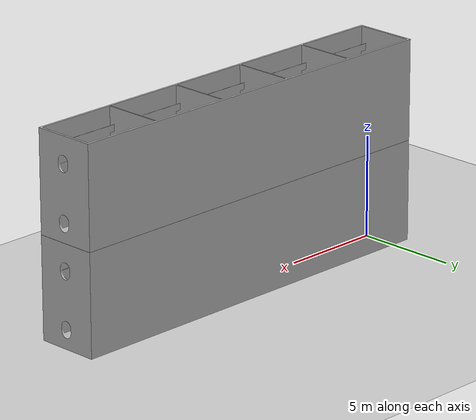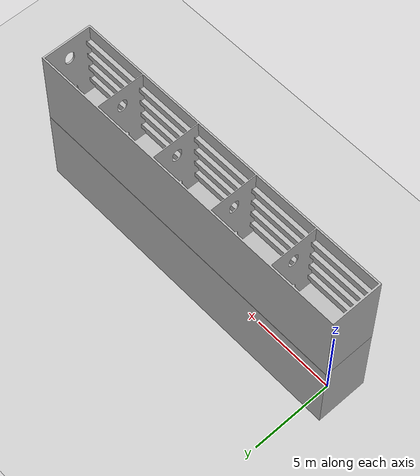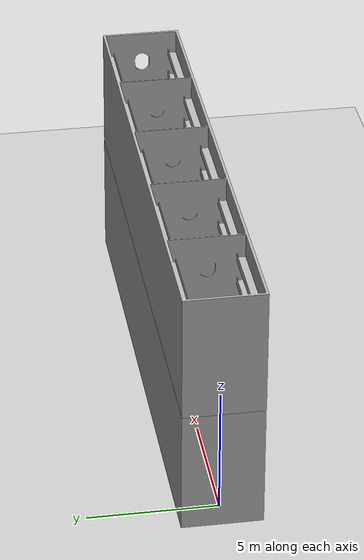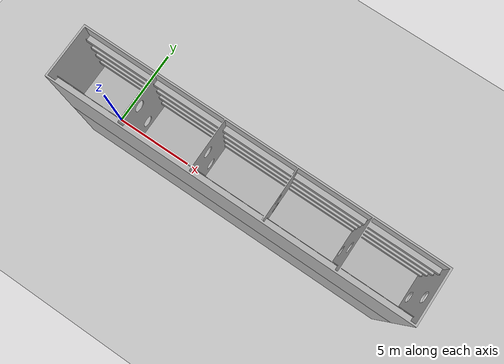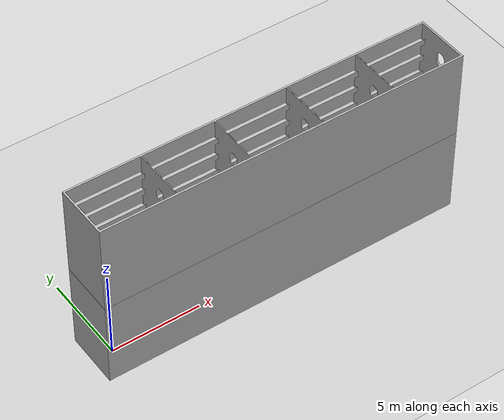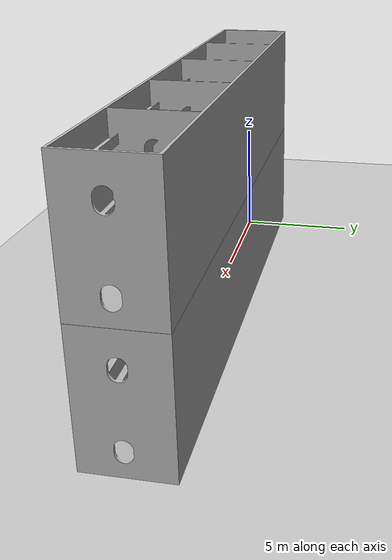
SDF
<sdf version="1.7">
 <world name="default">
  <light name="sun" type="directional">
   <pose>0 0 10 0 -0 0</pose>
   <diffuse>0.8 0.8 0.8 1</diffuse>
   <specular>0.2 0.2 0.2 1</specular>
   <attenuation>
    <range>1000</range>
    <constant>0.9</constant>
    <linear>0.01</linear>
    <quadratic>0.001</quadratic>
   </attenuation>
   <direction>-0.5 0.1 -0.9</direction>
   <spot><inner_angle>0</inner_angle><outer_angle>0</outer_angle><falloff>0</falloff></spot>
  </light>
  <plugin name="ros_interface_plugin" filename="librotors_gazebo_ros_interface_plugin.so"/>
  <model name="ground_plane">
   <static>1</static>
   <link name="link">
    <collision name="collision">
     <geometry><plane><normal>0 0 1</normal><size>100 100</size></plane></geometry>
     <surface><friction><ode><mu>100</mu><mu2>50</mu2></ode></friction></surface>
    </collision>
    <visual name="visual">
     <cast_shadows>0</cast_shadows>
     <geometry><plane><normal>0 0 1</normal><size>100 100</size></plane></geometry>
     <material>
      <script><uri>file://media/materials/scripts/gazebo.material</uri><name>Gazebo/Grey</name></script>
     </material>
    </visual>
   </link>
  </model>
  <gravity>0 0 -9.8</gravity>
  <magnetic_field>6e-06 2.3e-05 -4.2e-05</magnetic_field>
  <atmosphere type="adiabatic"/>
  <physics type="ode">
   <max_step_size>0.001</max_step_size>
   <real_time_factor>1</real_time_factor>
   <real_time_update_rate>1000</real_time_update_rate>
  </physics>
  <scene><ambient>0.4 0.4 0.4 1</ambient><background>0.7 0.7 0.7 1</background><shadows>1</shadows></scene>
  <spherical_coordinates>
   <surface_model>EARTH_WGS84</surface_model>
   <latitude_deg>0</latitude_deg>
   <longitude_deg>0</longitude_deg>
   <elevation>0</elevation>
   <heading_deg>0</heading_deg>
  </spherical_coordinates>
  <model name="bwt_4x3">
   <static>1</static>
   <link name="link">
    <collision name="collision">
     <geometry><mesh><uri>model://bwt_4x3/meshes/bwt_4x3.stl</uri></mesh></geometry>
    </collision>
    <visual name="visual"><geometry><mesh><uri>model://bwt_4x3/meshes/bwt_4x3.stl</uri></mesh></geometry></visual>
   </link>
   <pose>18.9996 -3.37845 -2.0157 0 -0 3.14</pose>
  </model>
  <model name="bwt_4x3_clone">
   <static>1</static>
   <link name="link">
    <collision name="collision">
     <geometry><mesh><uri>model://bwt_4x3/meshes/bwt_4x3.stl</uri></mesh></geometry>
    </collision>
    <visual name="visual"><geometry><mesh><uri>model://bwt_4x3/meshes/bwt_4x3.stl</uri></mesh></geometry></visual>
   </link>
   <pose>18.9933 -3.3851 2.94037 0 -0 3.14</pose>
  </model>
 </world>
</sdf>
